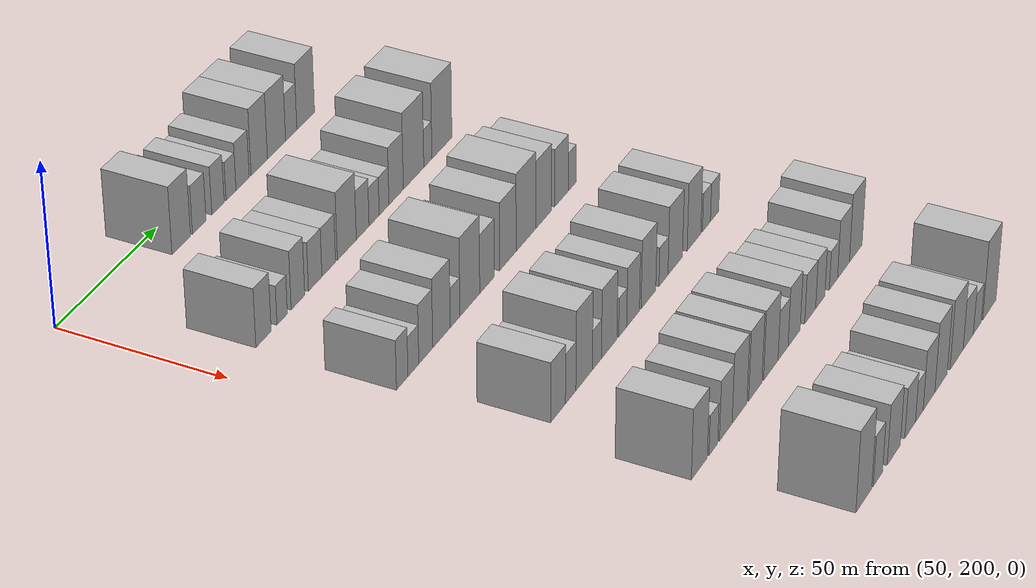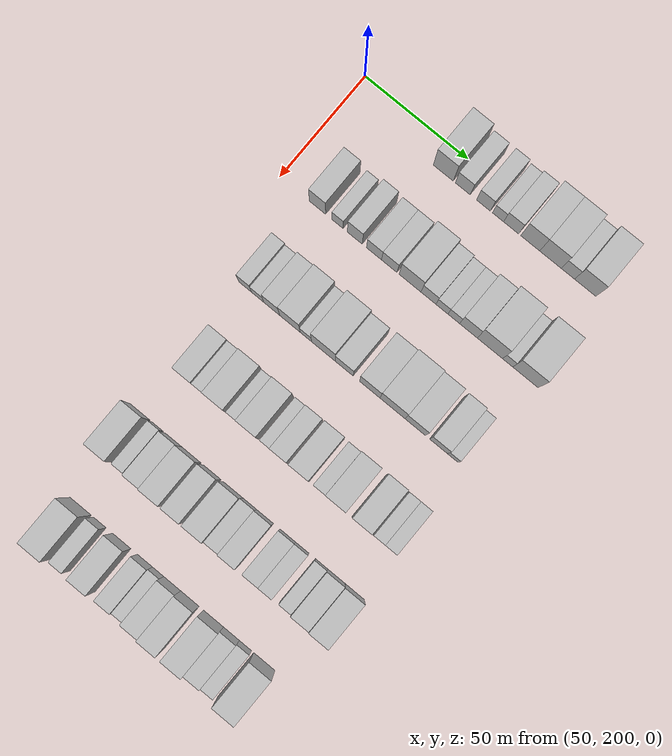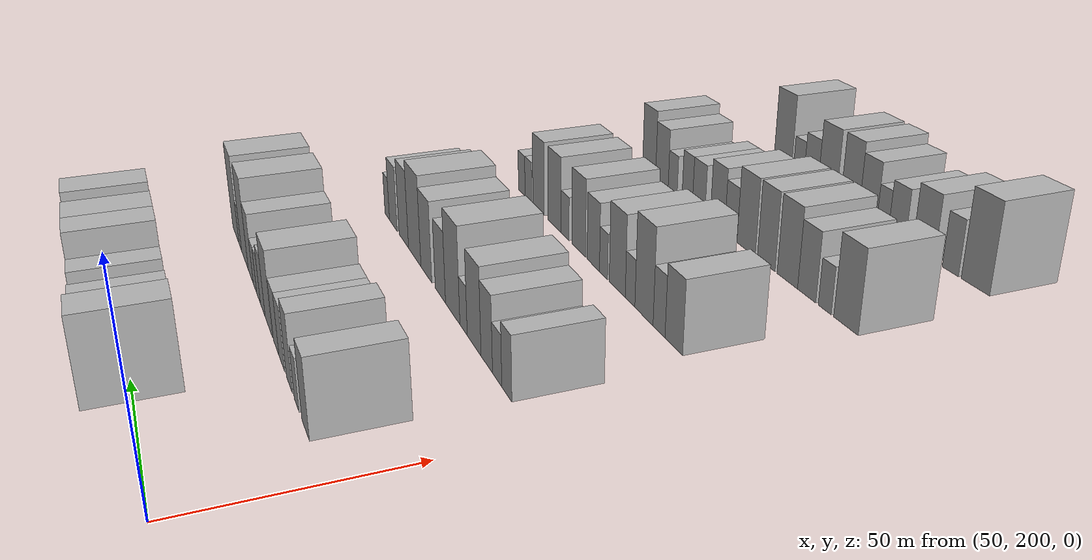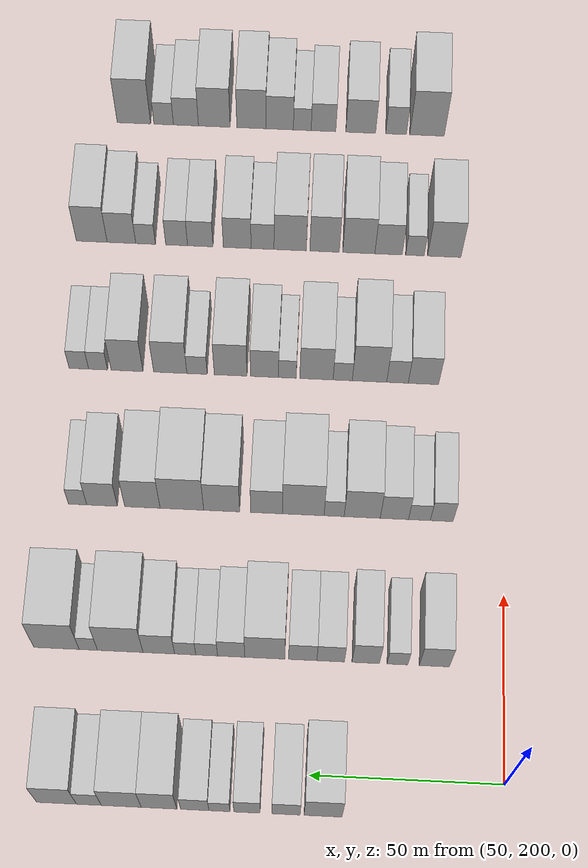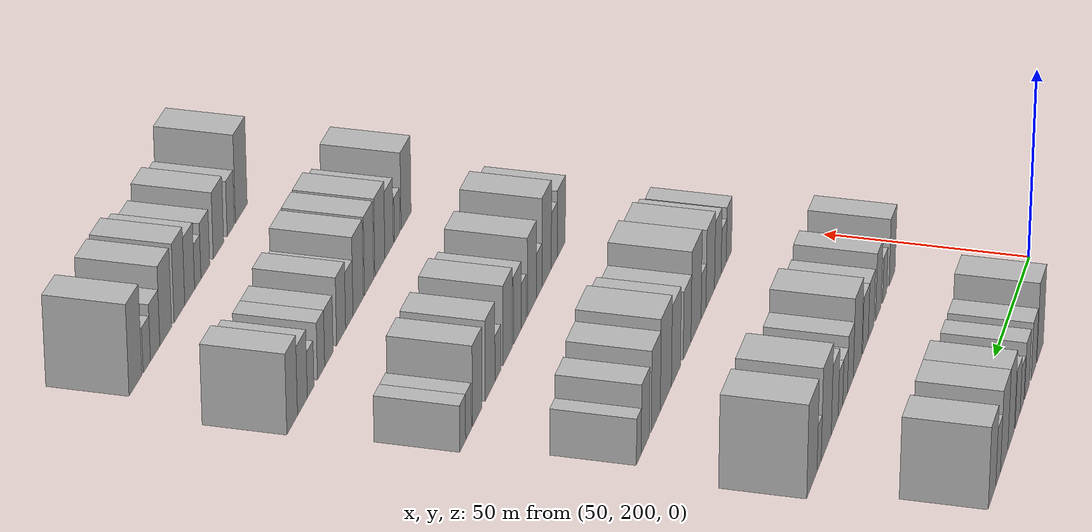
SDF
<sdf version="1.6">
 <world name="default">
  <model name="building_91">
   <static>1</static>
   <pose>50.0000 246.0226 0 0.000000 0.000000 0.000000</pose>
   <link name="link">
    <pose>0 0 10.50 0 0 0</pose>
    <collision name="collision"><geometry><box><size>20.0000 9.5938 21.0000</size></box></geometry></collision>
    <visual name="visual">
     <cast_shadows>0</cast_shadows>
     <geometry><box><size>20.0000 9.5938 21.0000</size></box></geometry>
     <material>
      <script>
       <uri>model://HANNAS_wall/materials/scripts</uri>
       <uri>model://HANNAS_wall/materials/textures</uri>
       <name>vrc/HANNAS_wall</name>
      </script>
     </material>
    </visual>
   </link>
  </model>
  <model name="building_92">
   <static>1</static>
   <pose>50.0000 255.3996 0 0.000000 0.000000 0.000000</pose>
   <link name="link">
    <pose>0 0 7.50 0 0 0</pose>
    <collision name="collision"><geometry><box><size>20.0000 7.1602 15.0000</size></box></geometry></collision>
    <visual name="visual">
     <cast_shadows>0</cast_shadows>
     <geometry><box><size>20.0000 7.1602 15.0000</size></box></geometry>
     <material>
      <script>
       <uri>model://HANNAS_wall/materials/scripts</uri>
       <uri>model://HANNAS_wall/materials/textures</uri>
       <name>vrc/HANNAS_wall</name>
      </script>
     </material>
    </visual>
   </link>
  </model>
  <model name="building_93">
   <static>1</static>
   <pose>50.0000 265.2910 0 0.000000 0.000000 0.000000</pose>
   <link name="link">
    <pose>0 0 7.50 0 0 0</pose>
    <collision name="collision"><geometry><box><size>20.0000 6.6227 15.0000</size></box></geometry></collision>
    <visual name="visual">
     <cast_shadows>0</cast_shadows>
     <geometry><box><size>20.0000 6.6227 15.0000</size></box></geometry>
     <material>
      <script>
       <uri>model://HANNAS_wall/materials/scripts</uri>
       <uri>model://HANNAS_wall/materials/textures</uri>
       <name>vrc/HANNAS_wall</name>
      </script>
     </material>
    </visual>
   </link>
  </model>
  <model name="building_94">
   <static>1</static>
   <pose>50.0000 272.2727 0 0.000000 0.000000 0.000000</pose>
   <link name="link">
    <pose>0 0 6.00 0 0 0</pose>
    <collision name="collision"><geometry><box><size>20.0000 5.3408 12.0000</size></box></geometry></collision>
    <visual name="visual">
     <cast_shadows>0</cast_shadows>
     <geometry><box><size>20.0000 5.3408 12.0000</size></box></geometry>
     <material>
      <script>
       <uri>model://HANNAS_wall/materials/scripts</uri>
       <uri>model://HANNAS_wall/materials/textures</uri>
       <name>vrc/HANNAS_wall</name>
      </script>
     </material>
    </visual>
   </link>
  </model>
  <model name="building_95">
   <static>1</static>
   <pose>50.0000 278.5388 0 0.000000 0.000000 0.000000</pose>
   <link name="link">
    <pose>0 0 7.50 0 0 0</pose>
    <collision name="collision"><geometry><box><size>20.0000 7.1914 15.0000</size></box></geometry></collision>
    <visual name="visual">
     <cast_shadows>0</cast_shadows>
     <geometry><box><size>20.0000 7.1914 15.0000</size></box></geometry>
     <material>
      <script>
       <uri>model://HANNAS_wall/materials/scripts</uri>
       <uri>model://HANNAS_wall/materials/textures</uri>
       <name>vrc/HANNAS_wall</name>
      </script>
     </material>
    </visual>
   </link>
  </model>
  <model name="building_96">
   <static>1</static>
   <pose>50.0000 287.6632 0 0.000000 0.000000 0.000000</pose>
   <link name="link">
    <pose>0 0 10.50 0 0 0</pose>
    <collision name="collision"><geometry><box><size>20.0000 9.0574 21.0000</size></box></geometry></collision>
    <visual name="visual">
     <cast_shadows>0</cast_shadows>
     <geometry><box><size>20.0000 9.0574 21.0000</size></box></geometry>
     <material>
      <script>
       <uri>model://HANNAS_wall/materials/scripts</uri>
       <uri>model://HANNAS_wall/materials/textures</uri>
       <name>vrc/HANNAS_wall</name>
      </script>
     </material>
    </visual>
   </link>
  </model>
  <model name="building_97">
   <static>1</static>
   <pose>50.0000 297.2721 0 0.000000 0.000000 0.000000</pose>
   <link name="link">
    <pose>0 0 10.50 0 0 0</pose>
    <collision name="collision"><geometry><box><size>20.0000 10.1604 21.0000</size></box></geometry></collision>
    <visual name="visual">
     <cast_shadows>0</cast_shadows>
     <geometry><box><size>20.0000 10.1604 21.0000</size></box></geometry>
     <material>
      <script>
       <uri>model://HANNAS_wall/materials/scripts</uri>
       <uri>model://HANNAS_wall/materials/textures</uri>
       <name>vrc/HANNAS_wall</name>
      </script>
     </material>
    </visual>
   </link>
  </model>
  <model name="building_98">
   <static>1</static>
   <pose>50.0000 305.5269 0 0.000000 0.000000 0.000000</pose>
   <link name="link">
    <pose>0 0 7.50 0 0 0</pose>
    <collision name="collision"><geometry><box><size>20.0000 6.3491 15.0000</size></box></geometry></collision>
    <visual name="visual">
     <cast_shadows>0</cast_shadows>
     <geometry><box><size>20.0000 6.3491 15.0000</size></box></geometry>
     <material>
      <script>
       <uri>model://HANNAS_wall/materials/scripts</uri>
       <uri>model://HANNAS_wall/materials/textures</uri>
       <name>vrc/HANNAS_wall</name>
      </script>
     </material>
    </visual>
   </link>
  </model>
  <model name="building_99">
   <static>1</static>
   <pose>50.0000 313.7572 0 0.000000 0.000000 0.000000</pose>
   <link name="link">
    <pose>0 0 10.50 0 0 0</pose>
    <collision name="collision"><geometry><box><size>20.0000 10.1115 21.0000</size></box></geometry></collision>
    <visual name="visual">
     <cast_shadows>0</cast_shadows>
     <geometry><box><size>20.0000 10.1115 21.0000</size></box></geometry>
     <material>
      <script>
       <uri>model://HANNAS_wall/materials/scripts</uri>
       <uri>model://HANNAS_wall/materials/textures</uri>
       <name>vrc/HANNAS_wall</name>
      </script>
     </material>
    </visual>
   </link>
  </model>
  <model name="building_232">
   <static>1</static>
   <pose>90.0000 218.2998 0 0.000000 0.000000 0.000000</pose>
   <link name="link">
    <pose>0 0 9.00 0 0 0</pose>
    <collision name="collision"><geometry><box><size>20.0000 7.8800 18.0000</size></box></geometry></collision>
    <visual name="visual">
     <cast_shadows>0</cast_shadows>
     <geometry><box><size>20.0000 7.8800 18.0000</size></box></geometry>
     <material>
      <script>
       <uri>model://HANNAS_wall/materials/scripts</uri>
       <uri>model://HANNAS_wall/materials/textures</uri>
       <name>vrc/HANNAS_wall</name>
      </script>
     </material>
    </visual>
   </link>
  </model>
  <model name="building_233">
   <static>1</static>
   <pose>90.0000 227.9577 0 0.000000 0.000000 0.000000</pose>
   <link name="link">
    <pose>0 0 6.00 0 0 0</pose>
    <collision name="collision"><geometry><box><size>20.0000 5.4358 12.0000</size></box></geometry></collision>
    <visual name="visual">
     <cast_shadows>0</cast_shadows>
     <geometry><box><size>20.0000 5.4358 12.0000</size></box></geometry>
     <material>
      <script>
       <uri>model://HANNAS_wall/materials/scripts</uri>
       <uri>model://HANNAS_wall/materials/textures</uri>
       <name>vrc/HANNAS_wall</name>
      </script>
     </material>
    </visual>
   </link>
  </model>
  <model name="building_234">
   <static>1</static>
   <pose>90.0000 236.2767 0 0.000000 0.000000 0.000000</pose>
   <link name="link">
    <pose>0 0 9.00 0 0 0</pose>
    <collision name="collision"><geometry><box><size>20.0000 7.2022 18.0000</size></box></geometry></collision>
    <visual name="visual">
     <cast_shadows>0</cast_shadows>
     <geometry><box><size>20.0000 7.2022 18.0000</size></box></geometry>
     <material>
      <script>
       <uri>model://HANNAS_wall/materials/scripts</uri>
       <uri>model://HANNAS_wall/materials/textures</uri>
       <name>vrc/HANNAS_wall</name>
      </script>
     </material>
    </visual>
   </link>
  </model>
  <model name="building_235">
   <static>1</static>
   <pose>90.0000 245.4949 0 0.000000 0.000000 0.000000</pose>
   <link name="link">
    <pose>0 0 7.50 0 0 0</pose>
    <collision name="collision"><geometry><box><size>20.0000 7.2342 15.0000</size></box></geometry></collision>
    <visual name="visual">
     <cast_shadows>0</cast_shadows>
     <geometry><box><size>20.0000 7.2342 15.0000</size></box></geometry>
     <material>
      <script>
       <uri>model://HANNAS_wall/materials/scripts</uri>
       <uri>model://HANNAS_wall/materials/textures</uri>
       <name>vrc/HANNAS_wall</name>
      </script>
     </material>
    </visual>
   </link>
  </model>
  <model name="building_236">
   <static>1</static>
   <pose>90.0000 252.8199 0 0.000000 0.000000 0.000000</pose>
   <link name="link">
    <pose>0 0 7.50 0 0 0</pose>
    <collision name="collision"><geometry><box><size>20.0000 7.4158 15.0000</size></box></geometry></collision>
    <visual name="visual">
     <cast_shadows>0</cast_shadows>
     <geometry><box><size>20.0000 7.4158 15.0000</size></box></geometry>
     <material>
      <script>
       <uri>model://HANNAS_wall/materials/scripts</uri>
       <uri>model://HANNAS_wall/materials/textures</uri>
       <name>vrc/HANNAS_wall</name>
      </script>
     </material>
    </visual>
   </link>
  </model>
  <model name="building_237">
   <static>1</static>
   <pose>90.0000 262.7637 0 0.000000 0.000000 0.000000</pose>
   <link name="link">
    <pose>0 0 10.50 0 0 0</pose>
    <collision name="collision"><geometry><box><size>20.0000 10.4717 21.0000</size></box></geometry></collision>
    <visual name="visual">
     <cast_shadows>0</cast_shadows>
     <geometry><box><size>20.0000 10.4717 21.0000</size></box></geometry>
     <material>
      <script>
       <uri>model://HANNAS_wall/materials/scripts</uri>
       <uri>model://HANNAS_wall/materials/textures</uri>
       <name>vrc/HANNAS_wall</name>
      </script>
     </material>
    </visual>
   </link>
  </model>
  <model name="building_238">
   <static>1</static>
   <pose>90.0000 271.5760 0 0.000000 0.000000 0.000000</pose>
   <link name="link">
    <pose>0 0 7.50 0 0 0</pose>
    <collision name="collision"><geometry><box><size>20.0000 7.1529 15.0000</size></box></geometry></collision>
    <visual name="visual">
     <cast_shadows>0</cast_shadows>
     <geometry><box><size>20.0000 7.1529 15.0000</size></box></geometry>
     <material>
      <script>
       <uri>model://HANNAS_wall/materials/scripts</uri>
       <uri>model://HANNAS_wall/materials/textures</uri>
       <name>vrc/HANNAS_wall</name>
      </script>
     </material>
    </visual>
   </link>
  </model>
  <model name="building_239">
   <static>1</static>
   <pose>90.0000 278.0287 0 0.000000 0.000000 0.000000</pose>
   <link name="link">
    <pose>0 0 6.00 0 0 0</pose>
    <collision name="collision"><geometry><box><size>20.0000 5.7525 12.0000</size></box></geometry></collision>
    <visual name="visual">
     <cast_shadows>0</cast_shadows>
     <geometry><box><size>20.0000 5.7525 12.0000</size></box></geometry>
     <material>
      <script>
       <uri>model://HANNAS_wall/materials/scripts</uri>
       <uri>model://HANNAS_wall/materials/textures</uri>
       <name>vrc/HANNAS_wall</name>
      </script>
     </material>
    </visual>
   </link>
  </model>
  <model name="building_240">
   <static>1</static>
   <pose>90.0000 283.6810 0 0.000000 0.000000 0.000000</pose>
   <link name="link">
    <pose>0 0 6.00 0 0 0</pose>
    <collision name="collision"><geometry><box><size>20.0000 5.5519 12.0000</size></box></geometry></collision>
    <visual name="visual">
     <cast_shadows>0</cast_shadows>
     <geometry><box><size>20.0000 5.5519 12.0000</size></box></geometry>
     <material>
      <script>
       <uri>model://HANNAS_wall/materials/scripts</uri>
       <uri>model://HANNAS_wall/materials/textures</uri>
       <name>vrc/HANNAS_wall</name>
      </script>
     </material>
    </visual>
   </link>
  </model>
  <model name="building_241">
   <static>1</static>
   <pose>90.0000 290.6208 0 0.000000 0.000000 0.000000</pose>
   <link name="link">
    <pose>0 0 9.00 0 0 0</pose>
    <collision name="collision"><geometry><box><size>20.0000 8.3277 18.0000</size></box></geometry></collision>
    <visual name="visual">
     <cast_shadows>0</cast_shadows>
     <geometry><box><size>20.0000 8.3277 18.0000</size></box></geometry>
     <material>
      <script>
       <uri>model://HANNAS_wall/materials/scripts</uri>
       <uri>model://HANNAS_wall/materials/textures</uri>
       <name>vrc/HANNAS_wall</name>
      </script>
     </material>
    </visual>
   </link>
  </model>
  <model name="building_242">
   <static>1</static>
   <pose>90.0000 300.7767 0 0.000000 0.000000 0.000000</pose>
   <link name="link">
    <pose>0 0 12.00 0 0 0</pose>
    <collision name="collision"><geometry><box><size>20.0000 11.9840 24.0000</size></box></geometry></collision>
    <visual name="visual">
     <cast_shadows>0</cast_shadows>
     <geometry><box><size>20.0000 11.9840 24.0000</size></box></geometry>
     <material>
      <script>
       <uri>model://HANNAS_wall/materials/scripts</uri>
       <uri>model://HANNAS_wall/materials/textures</uri>
       <name>vrc/HANNAS_wall</name>
      </script>
     </material>
    </visual>
   </link>
  </model>
  <model name="building_243">
   <static>1</static>
   <pose>90.0000 309.1836 0 0.000000 0.000000 0.000000</pose>
   <link name="link">
    <pose>0 0 6.00 0 0 0</pose>
    <collision name="collision"><geometry><box><size>20.0000 4.8298 12.0000</size></box></geometry></collision>
    <visual name="visual">
     <cast_shadows>0</cast_shadows>
     <geometry><box><size>20.0000 4.8298 12.0000</size></box></geometry>
     <material>
      <script>
       <uri>model://HANNAS_wall/materials/scripts</uri>
       <uri>model://HANNAS_wall/materials/textures</uri>
       <name>vrc/HANNAS_wall</name>
      </script>
     </material>
    </visual>
   </link>
  </model>
  <model name="building_244">
   <static>1</static>
   <pose>90.0000 317.5869 0 0.000000 0.000000 0.000000</pose>
   <link name="link">
    <pose>0 0 12.00 0 0 0</pose>
    <collision name="collision"><geometry><box><size>20.0000 11.9770 24.0000</size></box></geometry></collision>
    <visual name="visual">
     <cast_shadows>0</cast_shadows>
     <geometry><box><size>20.0000 11.9770 24.0000</size></box></geometry>
     <material>
      <script>
       <uri>model://HANNAS_wall/materials/scripts</uri>
       <uri>model://HANNAS_wall/materials/textures</uri>
       <name>vrc/HANNAS_wall</name>
      </script>
     </material>
    </visual>
   </link>
  </model>
  <model name="building_369">
   <static>1</static>
   <pose>130.0000 216.8097 0 0.000000 0.000000 0.000000</pose>
   <link name="link">
    <pose>0 0 7.50 0 0 0</pose>
    <collision name="collision"><geometry><box><size>20.0000 6.1735 15.0000</size></box></geometry></collision>
    <visual name="visual">
     <cast_shadows>0</cast_shadows>
     <geometry><box><size>20.0000 6.1735 15.0000</size></box></geometry>
     <material>
      <script>
       <uri>model://HANNAS_wall/materials/scripts</uri>
       <uri>model://HANNAS_wall/materials/textures</uri>
       <name>vrc/HANNAS_wall</name>
      </script>
     </material>
    </visual>
   </link>
  </model>
  <model name="building_370">
   <static>1</static>
   <pose>130.0000 222.8406 0 0.000000 0.000000 0.000000</pose>
   <link name="link">
    <pose>0 0 6.00 0 0 0</pose>
    <collision name="collision"><geometry><box><size>20.0000 5.8882 12.0000</size></box></geometry></collision>
    <visual name="visual">
     <cast_shadows>0</cast_shadows>
     <geometry><box><size>20.0000 5.8882 12.0000</size></box></geometry>
     <material>
      <script>
       <uri>model://HANNAS_wall/materials/scripts</uri>
       <uri>model://HANNAS_wall/materials/textures</uri>
       <name>vrc/HANNAS_wall</name>
      </script>
     </material>
    </visual>
   </link>
  </model>
  <model name="building_371">
   <static>1</static>
   <pose>130.0000 229.6184 0 0.000000 0.000000 0.000000</pose>
   <link name="link">
    <pose>0 0 9.00 0 0 0</pose>
    <collision name="collision"><geometry><box><size>20.0000 7.6675 18.0000</size></box></geometry></collision>
    <visual name="visual">
     <cast_shadows>0</cast_shadows>
     <geometry><box><size>20.0000 7.6675 18.0000</size></box></geometry>
     <material>
      <script>
       <uri>model://HANNAS_wall/materials/scripts</uri>
       <uri>model://HANNAS_wall/materials/textures</uri>
       <name>vrc/HANNAS_wall</name>
      </script>
     </material>
    </visual>
   </link>
  </model>
  <model name="building_372">
   <static>1</static>
   <pose>130.0000 238.3360 0 0.000000 0.000000 0.000000</pose>
   <link name="link">
    <pose>0 0 10.50 0 0 0</pose>
    <collision name="collision"><geometry><box><size>20.0000 9.7677 21.0000</size></box></geometry></collision>
    <visual name="visual">
     <cast_shadows>0</cast_shadows>
     <geometry><box><size>20.0000 9.7677 21.0000</size></box></geometry>
     <material>
      <script>
       <uri>model://HANNAS_wall/materials/scripts</uri>
       <uri>model://HANNAS_wall/materials/textures</uri>
       <name>vrc/HANNAS_wall</name>
      </script>
     </material>
    </visual>
   </link>
  </model>
  <model name="building_373">
   <static>1</static>
   <pose>130.0000 245.9409 0 0.000000 0.000000 0.000000</pose>
   <link name="link">
    <pose>0 0 6.00 0 0 0</pose>
    <collision name="collision"><geometry><box><size>20.0000 5.4422 12.0000</size></box></geometry></collision>
    <visual name="visual">
     <cast_shadows>0</cast_shadows>
     <geometry><box><size>20.0000 5.4422 12.0000</size></box></geometry>
     <material>
      <script>
       <uri>model://HANNAS_wall/materials/scripts</uri>
       <uri>model://HANNAS_wall/materials/textures</uri>
       <name>vrc/HANNAS_wall</name>
      </script>
     </material>
    </visual>
   </link>
  </model>
  <model name="building_374">
   <static>1</static>
   <pose>130.0000 254.3155 0 0.000000 0.000000 0.000000</pose>
   <link name="link">
    <pose>0 0 12.00 0 0 0</pose>
    <collision name="collision"><geometry><box><size>20.0000 11.3069 24.0000</size></box></geometry></collision>
    <visual name="visual">
     <cast_shadows>0</cast_shadows>
     <geometry><box><size>20.0000 11.3069 24.0000</size></box></geometry>
     <material>
      <script>
       <uri>model://HANNAS_wall/materials/scripts</uri>
       <uri>model://HANNAS_wall/materials/textures</uri>
       <name>vrc/HANNAS_wall</name>
      </script>
     </material>
    </visual>
   </link>
  </model>
  <model name="building_375">
   <static>1</static>
   <pose>130.0000 264.2548 0 0.000000 0.000000 0.000000</pose>
   <link name="link">
    <pose>0 0 9.00 0 0 0</pose>
    <collision name="collision"><geometry><box><size>20.0000 8.5718 18.0000</size></box></geometry></collision>
    <visual name="visual">
     <cast_shadows>0</cast_shadows>
     <geometry><box><size>20.0000 8.5718 18.0000</size></box></geometry>
     <material>
      <script>
       <uri>model://HANNAS_wall/materials/scripts</uri>
       <uri>model://HANNAS_wall/materials/textures</uri>
       <name>vrc/HANNAS_wall</name>
      </script>
     </material>
    </visual>
   </link>
  </model>
  <model name="building_376">
   <static>1</static>
   <pose>130.0000 276.4234 0 0.000000 0.000000 0.000000</pose>
   <link name="link">
    <pose>0 0 10.50 0 0 0</pose>
    <collision name="collision"><geometry><box><size>20.0000 9.7653 21.0000</size></box></geometry></collision>
    <visual name="visual">
     <cast_shadows>0</cast_shadows>
     <geometry><box><size>20.0000 9.7653 21.0000</size></box></geometry>
     <material>
      <script>
       <uri>model://HANNAS_wall/materials/scripts</uri>
       <uri>model://HANNAS_wall/materials/textures</uri>
       <name>vrc/HANNAS_wall</name>
      </script>
     </material>
    </visual>
   </link>
  </model>
  <model name="building_377">
   <static>1</static>
   <pose>130.0000 287.2343 0 0.000000 0.000000 0.000000</pose>
   <link name="link">
    <pose>0 0 12.00 0 0 0</pose>
    <collision name="collision"><geometry><box><size>20.0000 11.8565 24.0000</size></box></geometry></collision>
    <visual name="visual">
     <cast_shadows>0</cast_shadows>
     <geometry><box><size>20.0000 11.8565 24.0000</size></box></geometry>
     <material>
      <script>
       <uri>model://HANNAS_wall/materials/scripts</uri>
       <uri>model://HANNAS_wall/materials/textures</uri>
       <name>vrc/HANNAS_wall</name>
      </script>
     </material>
    </visual>
   </link>
  </model>
  <model name="building_378">
   <static>1</static>
   <pose>130.0000 297.9665 0 0.000000 0.000000 0.000000</pose>
   <link name="link">
    <pose>0 0 10.50 0 0 0</pose>
    <collision name="collision"><geometry><box><size>20.0000 9.6080 21.0000</size></box></geometry></collision>
    <visual name="visual">
     <cast_shadows>0</cast_shadows>
     <geometry><box><size>20.0000 9.6080 21.0000</size></box></geometry>
     <material>
      <script>
       <uri>model://HANNAS_wall/materials/scripts</uri>
       <uri>model://HANNAS_wall/materials/textures</uri>
       <name>vrc/HANNAS_wall</name>
      </script>
     </material>
    </visual>
   </link>
  </model>
  <model name="building_379">
   <static>1</static>
   <pose>130.0000 308.9432 0 0.000000 0.000000 0.000000</pose>
   <link name="link">
    <pose>0 0 9.00 0 0 0</pose>
    <collision name="collision"><geometry><box><size>20.0000 8.3453 18.0000</size></box></geometry></collision>
    <visual name="visual">
     <cast_shadows>0</cast_shadows>
     <geometry><box><size>20.0000 8.3453 18.0000</size></box></geometry>
     <material>
      <script>
       <uri>model://HANNAS_wall/materials/scripts</uri>
       <uri>model://HANNAS_wall/materials/textures</uri>
       <name>vrc/HANNAS_wall</name>
      </script>
     </material>
    </visual>
   </link>
  </model>
  <model name="building_380">
   <static>1</static>
   <pose>130.0000 315.6069 0 0.000000 0.000000 0.000000</pose>
   <link name="link">
    <pose>0 0 6.00 0 0 0</pose>
    <collision name="collision"><geometry><box><size>20.0000 4.9820 12.0000</size></box></geometry></collision>
    <visual name="visual">
     <cast_shadows>0</cast_shadows>
     <geometry><box><size>20.0000 4.9820 12.0000</size></box></geometry>
     <material>
      <script>
       <uri>model://HANNAS_wall/materials/scripts</uri>
       <uri>model://HANNAS_wall/materials/textures</uri>
       <name>vrc/HANNAS_wall</name>
      </script>
     </material>
    </visual>
   </link>
  </model>
  <model name="building_512">
   <static>1</static>
   <pose>170.0000 222.3331 0 0.000000 0.000000 0.000000</pose>
   <link name="link">
    <pose>0 0 9.00 0 0 0</pose>
    <collision name="collision"><geometry><box><size>20.0000 8.4742 18.0000</size></box></geometry></collision>
    <visual name="visual">
     <cast_shadows>0</cast_shadows>
     <geometry><box><size>20.0000 8.4742 18.0000</size></box></geometry>
     <material>
      <script>
       <uri>model://HANNAS_wall/materials/scripts</uri>
       <uri>model://HANNAS_wall/materials/textures</uri>
       <name>vrc/HANNAS_wall</name>
      </script>
     </material>
    </visual>
   </link>
  </model>
  <model name="building_513">
   <static>1</static>
   <pose>170.0000 229.5827 0 0.000000 0.000000 0.000000</pose>
   <link name="link">
    <pose>0 0 7.50 0 0 0</pose>
    <collision name="collision"><geometry><box><size>20.0000 6.0248 15.0000</size></box></geometry></collision>
    <visual name="visual">
     <cast_shadows>0</cast_shadows>
     <geometry><box><size>20.0000 6.0248 15.0000</size></box></geometry>
     <material>
      <script>
       <uri>model://HANNAS_wall/materials/scripts</uri>
       <uri>model://HANNAS_wall/materials/textures</uri>
       <name>vrc/HANNAS_wall</name>
      </script>
     </material>
    </visual>
   </link>
  </model>
  <model name="building_514">
   <static>1</static>
   <pose>170.0000 237.4117 0 0.000000 0.000000 0.000000</pose>
   <link name="link">
    <pose>0 0 12.00 0 0 0</pose>
    <collision name="collision"><geometry><box><size>20.0000 9.6333 24.0000</size></box></geometry></collision>
    <visual name="visual">
     <cast_shadows>0</cast_shadows>
     <geometry><box><size>20.0000 9.6333 24.0000</size></box></geometry>
     <material>
      <script>
       <uri>model://HANNAS_wall/materials/scripts</uri>
       <uri>model://HANNAS_wall/materials/textures</uri>
       <name>vrc/HANNAS_wall</name>
      </script>
     </material>
    </visual>
   </link>
  </model>
  <model name="building_515">
   <static>1</static>
   <pose>170.0000 244.9057 0 0.000000 0.000000 0.000000</pose>
   <link name="link">
    <pose>0 0 6.00 0 0 0</pose>
    <collision name="collision"><geometry><box><size>20.0000 5.3547 12.0000</size></box></geometry></collision>
    <visual name="visual">
     <cast_shadows>0</cast_shadows>
     <geometry><box><size>20.0000 5.3547 12.0000</size></box></geometry>
     <material>
      <script>
       <uri>model://HANNAS_wall/materials/scripts</uri>
       <uri>model://HANNAS_wall/materials/textures</uri>
       <name>vrc/HANNAS_wall</name>
      </script>
     </material>
    </visual>
   </link>
  </model>
  <model name="building_516">
   <static>1</static>
   <pose>170.0000 252.2434 0 0.000000 0.000000 0.000000</pose>
   <link name="link">
    <pose>0 0 10.50 0 0 0</pose>
    <collision name="collision"><geometry><box><size>20.0000 9.3207 21.0000</size></box></geometry></collision>
    <visual name="visual">
     <cast_shadows>0</cast_shadows>
     <geometry><box><size>20.0000 9.3207 21.0000</size></box></geometry>
     <material>
      <script>
       <uri>model://HANNAS_wall/materials/scripts</uri>
       <uri>model://HANNAS_wall/materials/textures</uri>
       <name>vrc/HANNAS_wall</name>
      </script>
     </material>
    </visual>
   </link>
  </model>
  <model name="building_517">
   <static>1</static>
   <pose>170.0000 260.3684 0 0.000000 0.000000 0.000000</pose>
   <link name="link">
    <pose>0 0 6.00 0 0 0</pose>
    <collision name="collision"><geometry><box><size>20.0000 4.9294 12.0000</size></box></geometry></collision>
    <visual name="visual">
     <cast_shadows>0</cast_shadows>
     <geometry><box><size>20.0000 4.9294 12.0000</size></box></geometry>
     <material>
      <script>
       <uri>model://HANNAS_wall/materials/scripts</uri>
       <uri>model://HANNAS_wall/materials/textures</uri>
       <name>vrc/HANNAS_wall</name>
      </script>
     </material>
    </visual>
   </link>
  </model>
  <model name="building_518">
   <static>1</static>
   <pose>170.0000 266.7578 0 0.000000 0.000000 0.000000</pose>
   <link name="link">
    <pose>0 0 9.00 0 0 0</pose>
    <collision name="collision"><geometry><box><size>20.0000 7.8493 18.0000</size></box></geometry></collision>
    <visual name="visual">
     <cast_shadows>0</cast_shadows>
     <geometry><box><size>20.0000 7.8493 18.0000</size></box></geometry>
     <material>
      <script>
       <uri>model://HANNAS_wall/materials/scripts</uri>
       <uri>model://HANNAS_wall/materials/textures</uri>
       <name>vrc/HANNAS_wall</name>
      </script>
     </material>
    </visual>
   </link>
  </model>
  <model name="building_519">
   <static>1</static>
   <pose>170.0000 276.2619 0 0.000000 0.000000 0.000000</pose>
   <link name="link">
    <pose>0 0 10.50 0 0 0</pose>
    <collision name="collision"><geometry><box><size>20.0000 9.1590 21.0000</size></box></geometry></collision>
    <visual name="visual">
     <cast_shadows>0</cast_shadows>
     <geometry><box><size>20.0000 9.1590 21.0000</size></box></geometry>
     <material>
      <script>
       <uri>model://HANNAS_wall/materials/scripts</uri>
       <uri>model://HANNAS_wall/materials/textures</uri>
       <name>vrc/HANNAS_wall</name>
      </script>
     </material>
    </visual>
   </link>
  </model>
  <model name="building_520">
   <static>1</static>
   <pose>170.0000 285.6869 0 0.000000 0.000000 0.000000</pose>
   <link name="link">
    <pose>0 0 6.00 0 0 0</pose>
    <collision name="collision"><geometry><box><size>20.0000 5.6909 12.0000</size></box></geometry></collision>
    <visual name="visual">
     <cast_shadows>0</cast_shadows>
     <geometry><box><size>20.0000 5.6909 12.0000</size></box></geometry>
     <material>
      <script>
       <uri>model://HANNAS_wall/materials/scripts</uri>
       <uri>model://HANNAS_wall/materials/textures</uri>
       <name>vrc/HANNAS_wall</name>
      </script>
     </material>
    </visual>
   </link>
  </model>
  <model name="building_521">
   <static>1</static>
   <pose>170.0000 293.1973 0 0.000000 0.000000 0.000000</pose>
   <link name="link">
    <pose>0 0 10.50 0 0 0</pose>
    <collision name="collision"><geometry><box><size>20.0000 9.3298 21.0000</size></box></geometry></collision>
    <visual name="visual">
     <cast_shadows>0</cast_shadows>
     <geometry><box><size>20.0000 9.3298 21.0000</size></box></geometry>
     <material>
      <script>
       <uri>model://HANNAS_wall/materials/scripts</uri>
       <uri>model://HANNAS_wall/materials/textures</uri>
       <name>vrc/HANNAS_wall</name>
      </script>
     </material>
    </visual>
   </link>
  </model>
  <model name="building_522">
   <static>1</static>
   <pose>170.0000 305.3327 0 0.000000 0.000000 0.000000</pose>
   <link name="link">
    <pose>0 0 10.50 0 0 0</pose>
    <collision name="collision"><geometry><box><size>20.0000 8.9410 21.0000</size></box></geometry></collision>
    <visual name="visual">
     <cast_shadows>0</cast_shadows>
     <geometry><box><size>20.0000 8.9410 21.0000</size></box></geometry>
     <material>
      <script>
       <uri>model://HANNAS_wall/materials/scripts</uri>
       <uri>model://HANNAS_wall/materials/textures</uri>
       <name>vrc/HANNAS_wall</name>
      </script>
     </material>
    </visual>
   </link>
  </model>
  <model name="building_523">
   <static>1</static>
   <pose>170.0000 313.4741 0 0.000000 0.000000 0.000000</pose>
   <link name="link">
    <pose>0 0 6.00 0 0 0</pose>
    <collision name="collision"><geometry><box><size>20.0000 5.3418 12.0000</size></box></geometry></collision>
    <visual name="visual">
     <cast_shadows>0</cast_shadows>
     <geometry><box><size>20.0000 5.3418 12.0000</size></box></geometry>
     <material>
      <script>
       <uri>model://HANNAS_wall/materials/scripts</uri>
       <uri>model://HANNAS_wall/materials/textures</uri>
       <name>vrc/HANNAS_wall</name>
      </script>
     </material>
    </visual>
   </link>
  </model>
  <model name="building_524">
   <static>1</static>
   <pose>170.0000 318.8837 0 0.000000 0.000000 0.000000</pose>
   <link name="link">
    <pose>0 0 6.00 0 0 0</pose>
    <collision name="collision"><geometry><box><size>20.0000 5.4775 12.0000</size></box></geometry></collision>
    <visual name="visual">
     <cast_shadows>0</cast_shadows>
     <geometry><box><size>20.0000 5.4775 12.0000</size></box></geometry>
     <material>
      <script>
       <uri>model://HANNAS_wall/materials/scripts</uri>
       <uri>model://HANNAS_wall/materials/textures</uri>
       <name>vrc/HANNAS_wall</name>
      </script>
     </material>
    </visual>
   </link>
  </model>
  <model name="building_657">
   <static>1</static>
   <pose>210.0000 216.9088 0 0.000000 0.000000 0.000000</pose>
   <link name="link">
    <pose>0 0 10.50 0 0 0</pose>
    <collision name="collision"><geometry><box><size>20.0000 9.5655 21.0000</size></box></geometry></collision>
    <visual name="visual">
     <cast_shadows>0</cast_shadows>
     <geometry><box><size>20.0000 9.5655 21.0000</size></box></geometry>
     <material>
      <script>
       <uri>model://HANNAS_wall/materials/scripts</uri>
       <uri>model://HANNAS_wall/materials/textures</uri>
       <name>vrc/HANNAS_wall</name>
      </script>
     </material>
    </visual>
   </link>
  </model>
  <model name="building_658">
   <static>1</static>
   <pose>210.0000 225.3618 0 0.000000 0.000000 0.000000</pose>
   <link name="link">
    <pose>0 0 6.00 0 0 0</pose>
    <collision name="collision"><geometry><box><size>20.0000 5.3406 12.0000</size></box></geometry></collision>
    <visual name="visual">
     <cast_shadows>0</cast_shadows>
     <geometry><box><size>20.0000 5.3406 12.0000</size></box></geometry>
     <material>
      <script>
       <uri>model://HANNAS_wall/materials/scripts</uri>
       <uri>model://HANNAS_wall/materials/textures</uri>
       <name>vrc/HANNAS_wall</name>
      </script>
     </material>
    </visual>
   </link>
  </model>
  <model name="building_659">
   <static>1</static>
   <pose>210.0000 232.9660 0 0.000000 0.000000 0.000000</pose>
   <link name="link">
    <pose>0 0 9.00 0 0 0</pose>
    <collision name="collision"><geometry><box><size>20.0000 7.8676 18.0000</size></box></geometry></collision>
    <visual name="visual">
     <cast_shadows>0</cast_shadows>
     <geometry><box><size>20.0000 7.8676 18.0000</size></box></geometry>
     <material>
      <script>
       <uri>model://HANNAS_wall/materials/scripts</uri>
       <uri>model://HANNAS_wall/materials/textures</uri>
       <name>vrc/HANNAS_wall</name>
      </script>
     </material>
    </visual>
   </link>
  </model>
  <model name="building_660">
   <static>1</static>
   <pose>210.0000 241.5346 0 0.000000 0.000000 0.000000</pose>
   <link name="link">
    <pose>0 0 10.50 0 0 0</pose>
    <collision name="collision"><geometry><box><size>20.0000 9.2697 21.0000</size></box></geometry></collision>
    <visual name="visual">
     <cast_shadows>0</cast_shadows>
     <geometry><box><size>20.0000 9.2697 21.0000</size></box></geometry>
     <material>
      <script>
       <uri>model://HANNAS_wall/materials/scripts</uri>
       <uri>model://HANNAS_wall/materials/textures</uri>
       <name>vrc/HANNAS_wall</name>
      </script>
     </material>
    </visual>
   </link>
  </model>
  <model name="building_661">
   <static>1</static>
   <pose>210.0000 251.4245 0 0.000000 0.000000 0.000000</pose>
   <link name="link">
    <pose>0 0 10.50 0 0 0</pose>
    <collision name="collision"><geometry><box><size>20.0000 8.5102 21.0000</size></box></geometry></collision>
    <visual name="visual">
     <cast_shadows>0</cast_shadows>
     <geometry><box><size>20.0000 8.5102 21.0000</size></box></geometry>
     <material>
      <script>
       <uri>model://HANNAS_wall/materials/scripts</uri>
       <uri>model://HANNAS_wall/materials/textures</uri>
       <name>vrc/HANNAS_wall</name>
      </script>
     </material>
    </visual>
   </link>
  </model>
  <model name="building_662">
   <static>1</static>
   <pose>210.0000 261.3482 0 0.000000 0.000000 0.000000</pose>
   <link name="link">
    <pose>0 0 10.50 0 0 0</pose>
    <collision name="collision"><geometry><box><size>20.0000 9.3371 21.0000</size></box></geometry></collision>
    <visual name="visual">
     <cast_shadows>0</cast_shadows>
     <geometry><box><size>20.0000 9.3371 21.0000</size></box></geometry>
     <material>
      <script>
       <uri>model://HANNAS_wall/materials/scripts</uri>
       <uri>model://HANNAS_wall/materials/textures</uri>
       <name>vrc/HANNAS_wall</name>
      </script>
     </material>
    </visual>
   </link>
  </model>
  <model name="building_663">
   <static>1</static>
   <pose>210.0000 269.3217 0 0.000000 0.000000 0.000000</pose>
   <link name="link">
    <pose>0 0 7.50 0 0 0</pose>
    <collision name="collision"><geometry><box><size>20.0000 6.6100 15.0000</size></box></geometry></collision>
    <visual name="visual">
     <cast_shadows>0</cast_shadows>
     <geometry><box><size>20.0000 6.6100 15.0000</size></box></geometry>
     <material>
      <script>
       <uri>model://HANNAS_wall/materials/scripts</uri>
       <uri>model://HANNAS_wall/materials/textures</uri>
       <name>vrc/HANNAS_wall</name>
      </script>
     </material>
    </visual>
   </link>
  </model>
  <model name="building_664">
   <static>1</static>
   <pose>210.0000 276.6338 0 0.000000 0.000000 0.000000</pose>
   <link name="link">
    <pose>0 0 9.00 0 0 0</pose>
    <collision name="collision"><geometry><box><size>20.0000 8.0142 18.0000</size></box></geometry></collision>
    <visual name="visual">
     <cast_shadows>0</cast_shadows>
     <geometry><box><size>20.0000 8.0142 18.0000</size></box></geometry>
     <material>
      <script>
       <uri>model://HANNAS_wall/materials/scripts</uri>
       <uri>model://HANNAS_wall/materials/textures</uri>
       <name>vrc/HANNAS_wall</name>
      </script>
     </material>
    </visual>
   </link>
  </model>
  <model name="building_665">
   <static>1</static>
   <pose>210.0000 287.3199 0 0.000000 0.000000 0.000000</pose>
   <link name="link">
    <pose>0 0 7.50 0 0 0</pose>
    <collision name="collision"><geometry><box><size>20.0000 7.3579 15.0000</size></box></geometry></collision>
    <visual name="visual">
     <cast_shadows>0</cast_shadows>
     <geometry><box><size>20.0000 7.3579 15.0000</size></box></geometry>
     <material>
      <script>
       <uri>model://HANNAS_wall/materials/scripts</uri>
       <uri>model://HANNAS_wall/materials/textures</uri>
       <name>vrc/HANNAS_wall</name>
      </script>
     </material>
    </visual>
   </link>
  </model>
  <model name="building_666">
   <static>1</static>
   <pose>210.0000 294.1510 0 0.000000 0.000000 0.000000</pose>
   <link name="link">
    <pose>0 0 7.50 0 0 0</pose>
    <collision name="collision"><geometry><box><size>20.0000 6.3042 15.0000</size></box></geometry></collision>
    <visual name="visual">
     <cast_shadows>0</cast_shadows>
     <geometry><box><size>20.0000 6.3042 15.0000</size></box></geometry>
     <material>
      <script>
       <uri>model://HANNAS_wall/materials/scripts</uri>
       <uri>model://HANNAS_wall/materials/textures</uri>
       <name>vrc/HANNAS_wall</name>
      </script>
     </material>
    </visual>
   </link>
  </model>
  <model name="building_667">
   <static>1</static>
   <pose>210.0000 303.1501 0 0.000000 0.000000 0.000000</pose>
   <link name="link">
    <pose>0 0 6.00 0 0 0</pose>
    <collision name="collision"><geometry><box><size>20.0000 5.6941 12.0000</size></box></geometry></collision>
    <visual name="visual">
     <cast_shadows>0</cast_shadows>
     <geometry><box><size>20.0000 5.6941 12.0000</size></box></geometry>
     <material>
      <script>
       <uri>model://HANNAS_wall/materials/scripts</uri>
       <uri>model://HANNAS_wall/materials/textures</uri>
       <name>vrc/HANNAS_wall</name>
      </script>
     </material>
    </visual>
   </link>
  </model>
  <model name="building_668">
   <static>1</static>
   <pose>210.0000 310.1355 0 0.000000 0.000000 0.000000</pose>
   <link name="link">
    <pose>0 0 9.00 0 0 0</pose>
    <collision name="collision"><geometry><box><size>20.0000 8.2766 18.0000</size></box></geometry></collision>
    <visual name="visual">
     <cast_shadows>0</cast_shadows>
     <geometry><box><size>20.0000 8.2766 18.0000</size></box></geometry>
     <material>
      <script>
       <uri>model://HANNAS_wall/materials/scripts</uri>
       <uri>model://HANNAS_wall/materials/textures</uri>
       <name>vrc/HANNAS_wall</name>
      </script>
     </material>
    </visual>
   </link>
  </model>
  <model name="building_669">
   <static>1</static>
   <pose>210.0000 318.7418 0 0.000000 0.000000 0.000000</pose>
   <link name="link">
    <pose>0 0 10.50 0 0 0</pose>
    <collision name="collision"><geometry><box><size>20.0000 8.9361 21.0000</size></box></geometry></collision>
    <visual name="visual">
     <cast_shadows>0</cast_shadows>
     <geometry><box><size>20.0000 8.9361 21.0000</size></box></geometry>
     <material>
      <script>
       <uri>model://HANNAS_wall/materials/scripts</uri>
       <uri>model://HANNAS_wall/materials/textures</uri>
       <name>vrc/HANNAS_wall</name>
      </script>
     </material>
    </visual>
   </link>
  </model>
  <model name="building_800">
   <static>1</static>
   <pose>250.0000 222.4456 0 0.000000 0.000000 0.000000</pose>
   <link name="link">
    <pose>0 0 12.00 0 0 0</pose>
    <collision name="collision"><geometry><box><size>20.0000 10.2264 24.0000</size></box></geometry></collision>
    <visual name="visual">
     <cast_shadows>0</cast_shadows>
     <geometry><box><size>20.0000 10.2264 24.0000</size></box></geometry>
     <material>
      <script>
       <uri>model://HANNAS_wall/materials/scripts</uri>
       <uri>model://HANNAS_wall/materials/textures</uri>
       <name>vrc/HANNAS_wall</name>
      </script>
     </material>
    </visual>
   </link>
  </model>
  <model name="building_801">
   <static>1</static>
   <pose>250.0000 231.6313 0 0.000000 0.000000 0.000000</pose>
   <link name="link">
    <pose>0 0 7.50 0 0 0</pose>
    <collision name="collision"><geometry><box><size>20.0000 6.1449 15.0000</size></box></geometry></collision>
    <visual name="visual">
     <cast_shadows>0</cast_shadows>
     <geometry><box><size>20.0000 6.1449 15.0000</size></box></geometry>
     <material>
      <script>
       <uri>model://HANNAS_wall/materials/scripts</uri>
       <uri>model://HANNAS_wall/materials/textures</uri>
       <name>vrc/HANNAS_wall</name>
      </script>
     </material>
    </visual>
   </link>
  </model>
  <model name="building_802">
   <static>1</static>
   <pose>250.0000 242.1174 0 0.000000 0.000000 0.000000</pose>
   <link name="link">
    <pose>0 0 9.00 0 0 0</pose>
    <collision name="collision"><geometry><box><size>20.0000 8.8275 18.0000</size></box></geometry></collision>
    <visual name="visual">
     <cast_shadows>0</cast_shadows>
     <geometry><box><size>20.0000 8.8275 18.0000</size></box></geometry>
     <material>
      <script>
       <uri>model://HANNAS_wall/materials/scripts</uri>
       <uri>model://HANNAS_wall/materials/textures</uri>
       <name>vrc/HANNAS_wall</name>
      </script>
     </material>
    </visual>
   </link>
  </model>
  <model name="building_803">
   <static>1</static>
   <pose>250.0000 253.1871 0 0.000000 0.000000 0.000000</pose>
   <link name="link">
    <pose>0 0 7.50 0 0 0</pose>
    <collision name="collision"><geometry><box><size>20.0000 7.3118 15.0000</size></box></geometry></collision>
    <visual name="visual">
     <cast_shadows>0</cast_shadows>
     <geometry><box><size>20.0000 7.3118 15.0000</size></box></geometry>
     <material>
      <script>
       <uri>model://HANNAS_wall/materials/scripts</uri>
       <uri>model://HANNAS_wall/materials/textures</uri>
       <name>vrc/HANNAS_wall</name>
      </script>
     </material>
    </visual>
   </link>
  </model>
  <model name="building_804">
   <static>1</static>
   <pose>250.0000 259.4754 0 0.000000 0.000000 0.000000</pose>
   <link name="link">
    <pose>0 0 6.00 0 0 0</pose>
    <collision name="collision"><geometry><box><size>20.0000 5.2647 12.0000</size></box></geometry></collision>
    <visual name="visual">
     <cast_shadows>0</cast_shadows>
     <geometry><box><size>20.0000 5.2647 12.0000</size></box></geometry>
     <material>
      <script>
       <uri>model://HANNAS_wall/materials/scripts</uri>
       <uri>model://HANNAS_wall/materials/textures</uri>
       <name>vrc/HANNAS_wall</name>
      </script>
     </material>
    </visual>
   </link>
  </model>
  <model name="building_805">
   <static>1</static>
   <pose>250.0000 266.1580 0 0.000000 0.000000 0.000000</pose>
   <link name="link">
    <pose>0 0 9.00 0 0 0</pose>
    <collision name="collision"><geometry><box><size>20.0000 8.1006 18.0000</size></box></geometry></collision>
    <visual name="visual">
     <cast_shadows>0</cast_shadows>
     <geometry><box><size>20.0000 8.1006 18.0000</size></box></geometry>
     <material>
      <script>
       <uri>model://HANNAS_wall/materials/scripts</uri>
       <uri>model://HANNAS_wall/materials/textures</uri>
       <name>vrc/HANNAS_wall</name>
      </script>
     </material>
    </visual>
   </link>
  </model>
  <model name="building_806">
   <static>1</static>
   <pose>250.0000 274.5836 0 0.000000 0.000000 0.000000</pose>
   <link name="link">
    <pose>0 0 10.50 0 0 0</pose>
    <collision name="collision"><geometry><box><size>20.0000 8.7504 21.0000</size></box></geometry></collision>
    <visual name="visual">
     <cast_shadows>0</cast_shadows>
     <geometry><box><size>20.0000 8.7504 21.0000</size></box></geometry>
     <material>
      <script>
       <uri>model://HANNAS_wall/materials/scripts</uri>
       <uri>model://HANNAS_wall/materials/textures</uri>
       <name>vrc/HANNAS_wall</name>
      </script>
     </material>
    </visual>
   </link>
  </model>
  <model name="building_807">
   <static>1</static>
   <pose>250.0000 285.6767 0 0.000000 0.000000 0.000000</pose>
   <link name="link">
    <pose>0 0 10.50 0 0 0</pose>
    <collision name="collision"><geometry><box><size>20.0000 9.4358 21.0000</size></box></geometry></collision>
    <visual name="visual">
     <cast_shadows>0</cast_shadows>
     <geometry><box><size>20.0000 9.4358 21.0000</size></box></geometry>
     <material>
      <script>
       <uri>model://HANNAS_wall/materials/scripts</uri>
       <uri>model://HANNAS_wall/materials/textures</uri>
       <name>vrc/HANNAS_wall</name>
      </script>
     </material>
    </visual>
   </link>
  </model>
  <model name="building_808">
   <static>1</static>
   <pose>250.0000 294.1266 0 0.000000 0.000000 0.000000</pose>
   <link name="link">
    <pose>0 0 7.50 0 0 0</pose>
    <collision name="collision"><geometry><box><size>20.0000 7.4641 15.0000</size></box></geometry></collision>
    <visual name="visual">
     <cast_shadows>0</cast_shadows>
     <geometry><box><size>20.0000 7.4641 15.0000</size></box></geometry>
     <material>
      <script>
       <uri>model://HANNAS_wall/materials/scripts</uri>
       <uri>model://HANNAS_wall/materials/textures</uri>
       <name>vrc/HANNAS_wall</name>
      </script>
     </material>
    </visual>
   </link>
  </model>
  <model name="building_809">
   <static>1</static>
   <pose>250.0000 300.7626 0 0.000000 0.000000 0.000000</pose>
   <link name="link">
    <pose>0 0 6.00 0 0 0</pose>
    <collision name="collision"><geometry><box><size>20.0000 5.8079 12.0000</size></box></geometry></collision>
    <visual name="visual">
     <cast_shadows>0</cast_shadows>
     <geometry><box><size>20.0000 5.8079 12.0000</size></box></geometry>
     <material>
      <script>
       <uri>model://HANNAS_wall/materials/scripts</uri>
       <uri>model://HANNAS_wall/materials/textures</uri>
       <name>vrc/HANNAS_wall</name>
      </script>
     </material>
    </visual>
   </link>
  </model>
  <model name="building_810">
   <static>1</static>
   <pose>250.0000 309.6460 0 0.000000 0.000000 0.000000</pose>
   <link name="link">
    <pose>0 0 12.00 0 0 0</pose>
    <collision name="collision"><geometry><box><size>20.0000 9.9589 24.0000</size></box></geometry></collision>
    <visual name="visual">
     <cast_shadows>0</cast_shadows>
     <geometry><box><size>20.0000 9.9589 24.0000</size></box></geometry>
     <material>
      <script>
       <uri>model://HANNAS_wall/materials/scripts</uri>
       <uri>model://HANNAS_wall/materials/textures</uri>
       <name>vrc/HANNAS_wall</name>
      </script>
     </material>
    </visual>
   </link>
  </model>
 </world>
</sdf>
